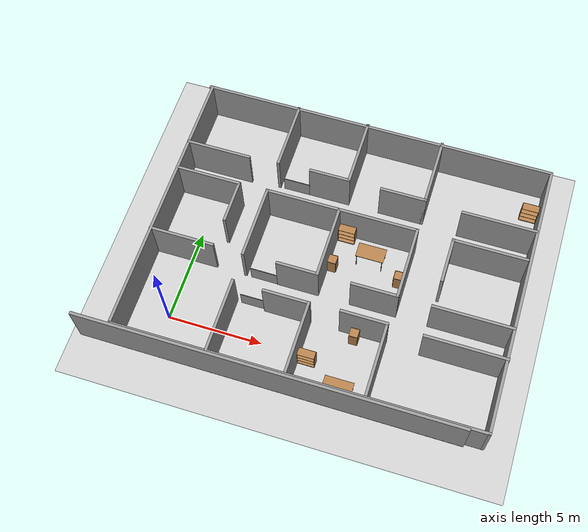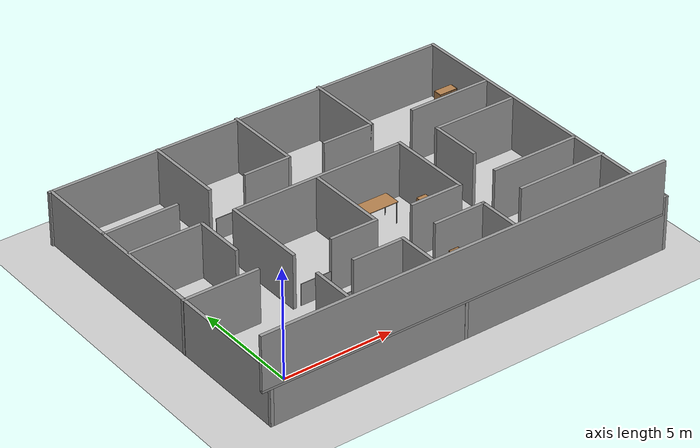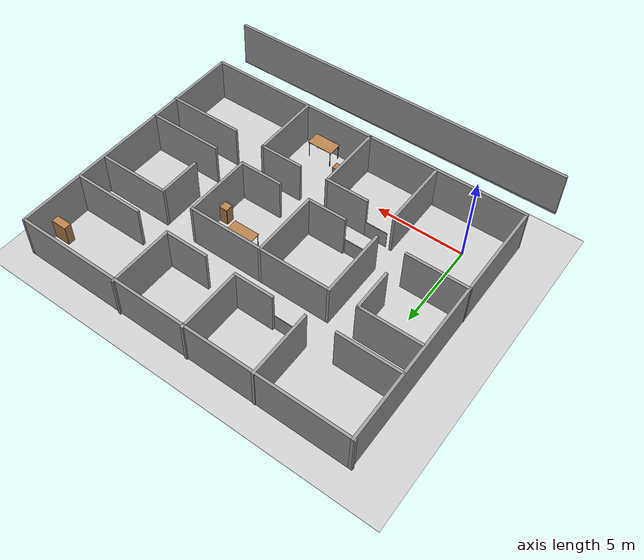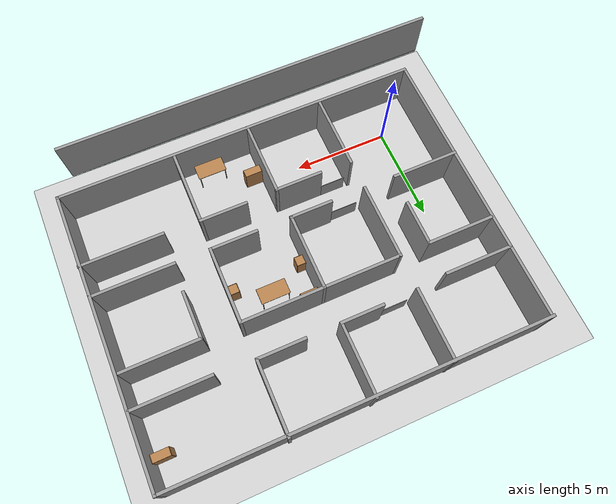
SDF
<sdf version="1.7">
 <world name="default">
  <light name="sun" type="directional">
   <pose>0 0 10 0 -0 0</pose>
   <diffuse>0.8 0.8 0.8 1</diffuse>
   <specular>0.2 0.2 0.2 1</specular>
   <attenuation>
    <range>1000</range>
    <constant>0.9</constant>
    <linear>0.01</linear>
    <quadratic>0.001</quadratic>
   </attenuation>
   <direction>-0.5 0.1 -0.9</direction>
   <spot><inner_angle>0</inner_angle><outer_angle>0</outer_angle><falloff>0</falloff></spot>
  </light>
  <model name="ground_plane">
   <static>1</static>
   <link name="link">
    <collision name="collision">
     <geometry><plane><normal>0 0 1</normal><size>100 100</size></plane></geometry>
     <surface><friction><ode><mu>100</mu><mu2>50</mu2></ode></friction></surface>
    </collision>
    <visual name="visual">
     <cast_shadows>0</cast_shadows>
     <geometry><plane><normal>0 0 1</normal><size>100 100</size></plane></geometry>
     <material>
      <script><uri>file://media/materials/scripts/gazebo.material</uri><name>Gazebo/Grey</name></script>
     </material>
    </visual>
   </link>
  </model>
  <gravity>0 0 -9.8</gravity>
  <magnetic_field>6e-06 2.3e-05 -4.2e-05</magnetic_field>
  <atmosphere type="adiabatic"/>
  <physics type="ode">
   <max_step_size>0.001</max_step_size>
   <real_time_factor>1</real_time_factor>
   <real_time_update_rate>1000</real_time_update_rate>
  </physics>
  <scene><ambient>0.4 0.4 0.4 1</ambient><background>0.7 0.7 0.7 1</background><shadows>1</shadows></scene>
  <spherical_coordinates>
   <surface_model>EARTH_WGS84</surface_model>
   <latitude_deg>0</latitude_deg>
   <longitude_deg>0</longitude_deg>
   <elevation>0</elevation>
   <heading_deg>0</heading_deg>
  </spherical_coordinates>
  <model name="indoors_2">
   <pose>7.48108 5.38602 0 0 -0 0</pose>
   <link name="Floor_0">
    <collision name="Floor_0_Collision">
     <geometry><box><size>19 0.15 0.1</size></box></geometry>
     <pose>0 0 0.05 0 -0 0</pose>
    </collision>
    <visual name="Floor_0_Visual">
     <pose>0 0 0.05 0 -0 0</pose>
     <geometry><box><size>19 0.15 0.1</size></box></geometry>
     <material>
      <script><uri>file://media/materials/scripts/gazebo.material</uri><name>Gazebo/Grey</name></script>
      <ambient>1 1 1 1</ambient>
     </material>
     <meta><layer>1</layer></meta>
    </visual>
    <pose>-1.02608 -8.28602 2.5 0 -0 0</pose>
   </link>
   <link name="Wall_0">
    <collision name="Wall_0_Collision">
     <geometry><box><size>19.15 0.15 2.5</size></box></geometry>
     <pose>0 0 1.25 0 -0 0</pose>
    </collision>
    <visual name="Wall_0_Visual">
     <pose>0 0 1.25 0 -0 0</pose>
     <geometry><box><size>19.15 0.15 2.5</size></box></geometry>
     <material>
      <script><uri>file://media/materials/scripts/gazebo.material</uri><name>Gazebo/Grey</name></script>
      <ambient>1 1 1 1</ambient>
     </material>
     <meta><layer>0</layer></meta>
    </visual>
    <pose>0.018922 -7.38602 0 0 -0 0</pose>
   </link>
   <link name="Wall_10">
    <collision name="Wall_10_Collision">
     <geometry><box><size>4 0.15 2.5</size></box></geometry>
     <pose>0 0 1.25 0 -0 0</pose>
    </collision>
    <visual name="Wall_10_Visual">
     <pose>0 0 1.25 0 -0 0</pose>
     <geometry><box><size>4 0.15 2.5</size></box></geometry>
     <material>
      <script><uri>file://media/materials/scripts/gazebo.material</uri><name>Gazebo/Grey</name></script>
      <ambient>1 1 1 1</ambient>
     </material>
     <meta><layer>0</layer></meta>
    </visual>
    <pose>-4.48108 -5.40902 0 0 -0 1.5708</pose>
   </link>
   <link name="Wall_12">
    <collision name="Wall_12_Collision">
     <geometry><box><size>4 0.15 2.5</size></box></geometry>
     <pose>0 0 1.25 0 -0 0</pose>
    </collision>
    <visual name="Wall_12_Visual">
     <pose>0 0 1.25 0 -0 0</pose>
     <geometry><box><size>4 0.15 2.5</size></box></geometry>
     <material>
      <script><uri>file://media/materials/scripts/gazebo.material</uri><name>Gazebo/Grey</name></script>
      <ambient>1 1 1 1</ambient>
     </material>
     <meta><layer>0</layer></meta>
    </visual>
    <pose>-0.481078 -5.46502 0 0 -0 1.5708</pose>
   </link>
   <link name="Wall_14">
    <collision name="Wall_14_Collision">
     <geometry><box><size>4 0.15 2.5</size></box></geometry>
     <pose>0 0 1.25 0 -0 0</pose>
    </collision>
    <visual name="Wall_14_Visual">
     <pose>0 0 1.25 0 -0 0</pose>
     <geometry><box><size>4 0.15 2.5</size></box></geometry>
     <material>
      <script><uri>file://media/materials/scripts/gazebo.material</uri><name>Gazebo/Grey</name></script>
      <ambient>1 1 1 1</ambient>
     </material>
     <meta><layer>0</layer></meta>
    </visual>
    <pose>3.51892 -5.39402 0 0 -0 1.5708</pose>
   </link>
   <link name="Wall_16">
    <collision name="Wall_16_Collision">
     <geometry><box><size>4.3 0.15 2.5</size></box></geometry>
     <pose>0 0 1.25 0 -0 0</pose>
    </collision>
    <visual name="Wall_16_Visual">
     <pose>0 0 1.25 0 -0 0</pose>
     <geometry><box><size>4.3 0.15 2.5</size></box></geometry>
     <material>
      <script><uri>file://media/materials/scripts/gazebo.material</uri><name>Gazebo/Grey</name></script>
      <ambient>1 1 1 1</ambient>
     </material>
     <meta><layer>0</layer></meta>
    </visual>
    <pose>7.47943 -3.5532 0 0 -0 3.14159</pose>
   </link>
   <link name="Wall_18">
    <collision name="Wall_18_Collision">
     <geometry><box><size>2.5 0.15 2.5</size></box></geometry>
     <pose>0 0 1.25 0 -0 0</pose>
    </collision>
    <visual name="Wall_18_Visual">
     <pose>0 0 1.25 0 -0 0</pose>
     <geometry><box><size>2.5 0.15 2.5</size></box></geometry>
     <material>
      <script><uri>file://media/materials/scripts/gazebo.material</uri><name>Gazebo/Grey</name></script>
      <ambient>1 1 1 1</ambient>
     </material>
     <meta><layer>0</layer></meta>
    </visual>
    <pose>-1.65608 -3.54002 0 0 -0 3.14159</pose>
   </link>
   <link name="Wall_2">
    <collision name="Wall_2_Collision">
     <geometry><box><size>19 0.15 2.5</size></box></geometry>
     <pose>0 0 1.25 0 -0 0</pose>
    </collision>
    <visual name="Wall_2_Visual">
     <pose>0 0 1.25 0 -0 0</pose>
     <geometry><box><size>19 0.15 2.5</size></box></geometry>
     <material>
      <script><uri>file://media/materials/scripts/gazebo.material</uri><name>Gazebo/Grey</name></script>
      <ambient>1 1 1 1</ambient>
     </material>
     <meta><layer>1</layer></meta>
    </visual>
    <pose>-1.02608 -8.28602 2.5 0 -0 0</pose>
   </link>
   <link name="Wall_20">
    <collision name="Wall_20_Collision">
     <geometry><box><size>2.5 0.15 2.5</size></box></geometry>
     <pose>0 0 1.25 0 -0 0</pose>
    </collision>
    <visual name="Wall_20_Visual">
     <pose>0 0 1.25 0 -0 0</pose>
     <geometry><box><size>2.5 0.15 2.5</size></box></geometry>
     <material>
      <script><uri>file://media/materials/scripts/gazebo.material</uri><name>Gazebo/Grey</name></script>
      <ambient>1 1 1 1</ambient>
     </material>
     <meta><layer>0</layer></meta>
    </visual>
    <pose>2.34392 -3.46902 0 0 -0 3.14159</pose>
   </link>
   <link name="Wall_22">
    <collision name="Wall_22_Collision">
     <geometry><box><size>3.5 0.15 2.5</size></box></geometry>
     <pose>0 0 1.25 0 -0 0</pose>
    </collision>
    <visual name="Wall_22_Visual">
     <pose>0 0 1.25 0 -0 0</pose>
     <geometry><box><size>3.5 0.15 2.5</size></box></geometry>
     <material>
      <script><uri>file://media/materials/scripts/gazebo.material</uri><name>Gazebo/Grey</name></script>
      <ambient>1 1 1 1</ambient>
     </material>
     <meta><layer>0</layer></meta>
    </visual>
    <pose>-7.82308 -1.88602 0 0 -0 0</pose>
   </link>
   <link name="Wall_24">
    <collision name="Wall_24_Collision">
     <geometry><box><size>3.5 0.15 2.5</size></box></geometry>
     <pose>0 0 1.25 0 -0 0</pose>
    </collision>
    <visual name="Wall_24_Visual">
     <pose>0 0 1.25 0 -0 0</pose>
     <geometry><box><size>3.5 0.15 2.5</size></box></geometry>
     <material>
      <script><uri>file://media/materials/scripts/gazebo.material</uri><name>Gazebo/Grey</name></script>
      <ambient>1 1 1 1</ambient>
     </material>
     <meta><layer>0</layer></meta>
    </visual>
    <pose>-7.71259 1.93002 0 0 -0 0</pose>
   </link>
   <link name="Wall_26">
    <collision name="Wall_26_Collision">
     <geometry><box><size>2.4 0.15 2.5</size></box></geometry>
     <pose>0 0 1.25 0 -0 0</pose>
    </collision>
    <visual name="Wall_26_Visual">
     <pose>0 0 1.25 0 -0 0</pose>
     <geometry><box><size>2.4 0.15 2.5</size></box></geometry>
     <material>
      <script><uri>file://media/materials/scripts/gazebo.material</uri><name>Gazebo/Grey</name></script>
      <ambient>1 1 1 1</ambient>
     </material>
     <meta><layer>0</layer></meta>
    </visual>
    <pose>-6.03759 0.805015 0 0 -0 -1.5708</pose>
   </link>
   <link name="Wall_28">
    <collision name="Wall_28_Collision">
     <geometry><box><size>3.5 0.15 2.5</size></box></geometry>
     <pose>0 0 1.25 0 -0 0</pose>
    </collision>
    <visual name="Wall_28_Visual">
     <pose>0 0 1.25 0 -0 0</pose>
     <geometry><box><size>3.5 0.15 2.5</size></box></geometry>
     <material>
      <script><uri>file://media/materials/scripts/gazebo.material</uri><name>Gazebo/Grey</name></script>
      <ambient>1 1 1 1</ambient>
     </material>
     <meta><layer>0</layer></meta>
    </visual>
    <pose>-7.76808 3.61398 0 0 -0 0</pose>
   </link>
   <link name="Wall_32">
    <collision name="Wall_32_Collision">
     <geometry><box><size>4 0.15 2.5</size></box></geometry>
     <pose>0 0 1.25 0 -0 0</pose>
    </collision>
    <visual name="Wall_32_Visual">
     <pose>0 0 1.25 0 -0 0</pose>
     <geometry><box><size>4 0.15 2.5</size></box></geometry>
     <material>
      <script><uri>file://media/materials/scripts/gazebo.material</uri><name>Gazebo/Grey</name></script>
      <ambient>1 1 1 1</ambient>
     </material>
     <meta><layer>0</layer></meta>
    </visual>
    <pose>-4.49048 0.026184 0 0 -0 1.5708</pose>
   </link>
   <link name="Wall_34">
    <collision name="Wall_34_Collision">
     <geometry><box><size>8.25 0.15 2.5</size></box></geometry>
     <pose>0 0 1.25 0 -0 0</pose>
    </collision>
    <visual name="Wall_34_Visual">
     <pose>0 0 1.25 0 -0 0</pose>
     <geometry><box><size>8.25 0.15 2.5</size></box></geometry>
     <material>
      <script><uri>file://media/materials/scripts/gazebo.material</uri><name>Gazebo/Grey</name></script>
      <ambient>1 1 1 1</ambient>
     </material>
     <meta><layer>0</layer></meta>
    </visual>
    <pose>-0.440485 1.95118 0 0 -0 0</pose>
   </link>
   <link name="Wall_35">
    <collision name="Wall_35_Collision">
     <geometry><box><size>4 0.15 2.5</size></box></geometry>
     <pose>0 0 1.25 0 -0 0</pose>
    </collision>
    <visual name="Wall_35_Visual">
     <pose>0 0 1.25 0 -0 0</pose>
     <geometry><box><size>4 0.15 2.5</size></box></geometry>
     <material>
      <script><uri>file://media/materials/scripts/gazebo.material</uri><name>Gazebo/Grey</name></script>
      <ambient>1 1 1 1</ambient>
     </material>
     <meta><layer>0</layer></meta>
    </visual>
    <pose>3.60952 0.026184 0 0 -0 -1.5708</pose>
   </link>
   <link name="Wall_37">
    <collision name="Wall_37_Collision">
     <geometry><box><size>2.5 0.15 2.5</size></box></geometry>
     <pose>0 0 1.25 0 -0 0</pose>
    </collision>
    <visual name="Wall_37_Visual">
     <pose>0 0 1.25 0 -0 0</pose>
     <geometry><box><size>2.5 0.15 2.5</size></box></geometry>
     <material>
      <script><uri>file://media/materials/scripts/gazebo.material</uri><name>Gazebo/Grey</name></script>
      <ambient>1 1 1 1</ambient>
     </material>
     <meta><layer>0</layer></meta>
    </visual>
    <pose>2.43452 -1.89882 0 0 -0 3.14159</pose>
   </link>
   <link name="Wall_39">
    <collision name="Wall_39_Collision">
     <geometry><box><size>4 0.15 2.5</size></box></geometry>
     <pose>0 0 1.25 0 -0 0</pose>
    </collision>
    <visual name="Wall_39_Visual">
     <pose>0 0 1.25 0 -0 0</pose>
     <geometry><box><size>4 0.15 2.5</size></box></geometry>
     <material>
      <script><uri>file://media/materials/scripts/gazebo.material</uri><name>Gazebo/Grey</name></script>
      <ambient>1 1 1 1</ambient>
     </material>
     <meta><layer>0</layer></meta>
    </visual>
    <pose>-0.557426 0.026184 0 0 -0 1.5708</pose>
   </link>
   <link name="Wall_4">
    <collision name="Wall_4_Collision">
     <geometry><box><size>14.8671 0.15 2.5</size></box></geometry>
     <pose>0 0 1.25 0 -0 0</pose>
    </collision>
    <visual name="Wall_4_Visual">
     <pose>0 0 1.25 0 -0 0</pose>
     <geometry><box><size>14.8671 0.15 2.5</size></box></geometry>
     <material>
      <script><uri>file://media/materials/scripts/gazebo.material</uri><name>Gazebo/Grey</name></script>
      <ambient>1 1 1 1</ambient>
     </material>
     <meta><layer>0</layer></meta>
    </visual>
    <pose>-9.48108 -0.027809 0 0 -0 1.5708</pose>
   </link>
   <link name="Wall_42">
    <collision name="Wall_42_Collision">
     <geometry><box><size>2.25 0.15 2.5</size></box></geometry>
     <pose>0 0 1.25 0 -0 0</pose>
    </collision>
    <visual name="Wall_42_Visual">
     <pose>0 0 1.25 0 -0 0</pose>
     <geometry><box><size>2.25 0.15 2.5</size></box></geometry>
     <material>
      <script><uri>file://media/materials/scripts/gazebo.material</uri><name>Gazebo/Grey</name></script>
      <ambient>1 1 1 1</ambient>
     </material>
     <meta><layer>0</layer></meta>
    </visual>
    <pose>-1.60743 -1.89882 0 0 -0 3.14159</pose>
   </link>
   <link name="Wall_44">
    <collision name="Wall_44_Collision">
     <geometry><box><size>4.25 0.15 2.5</size></box></geometry>
     <pose>0 0 1.25 0 -0 0</pose>
    </collision>
    <visual name="Wall_44_Visual">
     <pose>0 0 1.25 0 -0 0</pose>
     <geometry><box><size>4.25 0.15 2.5</size></box></geometry>
     <material>
      <script><uri>file://media/materials/scripts/gazebo.material</uri><name>Gazebo/Grey</name></script>
      <ambient>1 1 1 1</ambient>
     </material>
     <meta><layer>0</layer></meta>
    </visual>
    <pose>7.45621 -1.91179 0 0 -0 0</pose>
   </link>
   <link name="Wall_46">
    <collision name="Wall_46_Collision">
     <geometry><box><size>4 0.15 2.5</size></box></geometry>
     <pose>0 0 1.25 0 -0 0</pose>
    </collision>
    <visual name="Wall_46_Visual">
     <pose>0 0 1.25 0 -0 0</pose>
     <geometry><box><size>4 0.15 2.5</size></box></geometry>
     <material>
      <script><uri>file://media/materials/scripts/gazebo.material</uri><name>Gazebo/Grey</name></script>
      <ambient>1 1 1 1</ambient>
     </material>
     <meta><layer>0</layer></meta>
    </visual>
    <pose>7.42753 1.94115 0 0 -0 0</pose>
   </link>
   <link name="Wall_48">
    <collision name="Wall_48_Collision">
     <geometry><box><size>2.5 0.15 2.5</size></box></geometry>
     <pose>0 0 1.25 0 -0 0</pose>
    </collision>
    <visual name="Wall_48_Visual">
     <pose>0 0 1.25 0 -0 0</pose>
     <geometry><box><size>2.5 0.15 2.5</size></box></geometry>
     <material>
      <script><uri>file://media/materials/scripts/gazebo.material</uri><name>Gazebo/Grey</name></script>
      <ambient>1 1 1 1</ambient>
     </material>
     <meta><layer>0</layer></meta>
    </visual>
    <pose>5.50253 0.766149 0 0 -0 -1.5708</pose>
   </link>
   <link name="Wall_50">
    <collision name="Wall_50_Collision">
     <geometry><box><size>3.75 0.15 2.5</size></box></geometry>
     <pose>0 0 1.25 0 -0 0</pose>
    </collision>
    <visual name="Wall_50_Visual">
     <pose>0 0 1.25 0 -0 0</pose>
     <geometry><box><size>3.75 0.15 2.5</size></box></geometry>
     <material>
      <script><uri>file://media/materials/scripts/gazebo.material</uri><name>Gazebo/Grey</name></script>
      <ambient>1 1 1 1</ambient>
     </material>
     <meta><layer>0</layer></meta>
    </visual>
    <pose>-4.46932 5.55322 0 0 -0 -1.5708</pose>
   </link>
   <link name="Wall_52">
    <collision name="Wall_52_Collision">
     <geometry><box><size>3.75 0.15 2.5</size></box></geometry>
     <pose>0 0 1.25 0 -0 0</pose>
    </collision>
    <visual name="Wall_52_Visual">
     <pose>0 0 1.25 0 -0 0</pose>
     <geometry><box><size>3.75 0.15 2.5</size></box></geometry>
     <material>
      <script><uri>file://media/materials/scripts/gazebo.material</uri><name>Gazebo/Grey</name></script>
      <ambient>1 1 1 1</ambient>
     </material>
     <meta><layer>0</layer></meta>
    </visual>
    <pose>-0.580388 5.59002 0 0 -0 1.5708</pose>
   </link>
   <link name="Wall_54">
    <collision name="Wall_54_Collision">
     <geometry><box><size>3.75 0.15 2.5</size></box></geometry>
     <pose>0 0 1.25 0 -0 0</pose>
    </collision>
    <visual name="Wall_54_Visual">
     <pose>0 0 1.25 0 -0 0</pose>
     <geometry><box><size>3.75 0.15 2.5</size></box></geometry>
     <material>
      <script><uri>file://media/materials/scripts/gazebo.material</uri><name>Gazebo/Grey</name></script>
      <ambient>1 1 1 1</ambient>
     </material>
     <meta><layer>0</layer></meta>
    </visual>
    <pose>3.55972 5.59002 0 0 -0 1.5708</pose>
   </link>
   <link name="Wall_56">
    <collision name="Wall_56_Collision">
     <geometry><box><size>2.5 0.15 2.5</size></box></geometry>
     <pose>0 0 1.25 0 -0 0</pose>
    </collision>
    <visual name="Wall_56_Visual">
     <pose>0 0 1.25 0 -0 0</pose>
     <geometry><box><size>2.5 0.15 2.5</size></box></geometry>
     <material>
      <script><uri>file://media/materials/scripts/gazebo.material</uri><name>Gazebo/Grey</name></script>
      <ambient>1 1 1 1</ambient>
     </material>
     <meta><layer>0</layer></meta>
    </visual>
    <pose>2.38472 3.79002 0 0 -0 0</pose>
   </link>
   <link name="Wall_58">
    <collision name="Wall_58_Collision">
     <geometry><box><size>2.25 0.15 2.5</size></box></geometry>
     <pose>0 0 1.25 0 -0 0</pose>
    </collision>
    <visual name="Wall_58_Visual">
     <pose>0 0 1.25 0 -0 0</pose>
     <geometry><box><size>2.25 0.15 2.5</size></box></geometry>
     <material>
      <script><uri>file://media/materials/scripts/gazebo.material</uri><name>Gazebo/Grey</name></script>
      <ambient>1 1 1 1</ambient>
     </material>
     <meta><layer>0</layer></meta>
    </visual>
    <pose>-1.63039 3.79002 0 0 -0 0</pose>
   </link>
   <link name="Wall_6">
    <collision name="Wall_6_Collision">
     <geometry><box><size>14.8402 0.15 2.5</size></box></geometry>
     <pose>0 0 1.25 0 -0 0</pose>
    </collision>
    <visual name="Wall_6_Visual">
     <pose>0 0 1.25 0 -0 0</pose>
     <geometry><box><size>14.8402 0.15 2.5</size></box></geometry>
     <material>
      <script><uri>file://media/materials/scripts/gazebo.material</uri><name>Gazebo/Grey</name></script>
      <ambient>1 1 1 1</ambient>
     </material>
     <meta><layer>0</layer></meta>
    </visual>
    <pose>9.51892 -0.041274 0 0 -0 1.5708</pose>
   </link>
   <link name="Wall_60">
    <collision name="Wall_60_Collision">
     <geometry><box><size>4 0.15 2.5</size></box></geometry>
     <pose>0 0 1.25 0 -0 0</pose>
    </collision>
    <visual name="Wall_60_Visual">
     <pose>0 0 1.25 0 -0 0</pose>
     <geometry><box><size>4 0.15 2.5</size></box></geometry>
     <material>
      <script><uri>file://media/materials/scripts/gazebo.material</uri><name>Gazebo/Grey</name></script>
      <ambient>1 1 1 1</ambient>
     </material>
     <meta><layer>0</layer></meta>
    </visual>
    <pose>7.52292 3.66263 0 0 -0 0</pose>
   </link>
   <link name="Wall_8">
    <collision name="Wall_8_Collision">
     <geometry><box><size>19.15 0.15 2.5</size></box></geometry>
     <pose>0 0 1.25 0 -0 0</pose>
    </collision>
    <visual name="Wall_8_Visual">
     <pose>0 0 1.25 0 -0 0</pose>
     <geometry><box><size>19.15 0.15 2.5</size></box></geometry>
     <material>
      <script><uri>file://media/materials/scripts/gazebo.material</uri><name>Gazebo/Grey</name></script>
      <ambient>1 1 1 1</ambient>
     </material>
     <meta><layer>0</layer></meta>
    </visual>
    <pose>-0.054326 7.31693 0 0 -0 -0.001417</pose>
   </link>
   <static>1</static>
  </model>
  <model name="table">
   <static>1</static>
   <link name="link">
    <collision name="surface">
     <pose>0 0 1 0 -0 0</pose>
     <geometry><box><size>1.5 0.8 0.03</size></box></geometry>
     <surface><friction><ode><mu>0.6</mu><mu2>0.6</mu2></ode></friction></surface>
    </collision>
    <visual name="visual1">
     <pose>0 0 1 0 -0 0</pose>
     <geometry><box><size>1.5 0.8 0.03</size></box></geometry>
     <material>
      <script><uri>file://media/materials/scripts/gazebo.material</uri><name>Gazebo/Wood</name></script>
     </material>
    </visual>
    <collision name="front_left_leg">
     <pose>0.68 0.38 0.5 0 -0 0</pose>
     <geometry><cylinder><radius>0.02</radius><length>1</length></cylinder></geometry>
    </collision>
    <visual name="front_left_leg">
     <pose>0.68 0.38 0.5 0 -0 0</pose>
     <geometry><cylinder><radius>0.02</radius><length>1</length></cylinder></geometry>
     <material>
      <script><uri>file://media/materials/scripts/gazebo.material</uri><name>Gazebo/Grey</name></script>
     </material>
    </visual>
    <collision name="front_right_leg">
     <pose>0.68 -0.38 0.5 0 -0 0</pose>
     <geometry><cylinder><radius>0.02</radius><length>1</length></cylinder></geometry>
    </collision>
    <visual name="front_right_leg">
     <pose>0.68 -0.38 0.5 0 -0 0</pose>
     <geometry><cylinder><radius>0.02</radius><length>1</length></cylinder></geometry>
     <material>
      <script><uri>file://media/materials/scripts/gazebo.material</uri><name>Gazebo/Grey</name></script>
     </material>
    </visual>
    <collision name="back_right_leg">
     <pose>-0.68 -0.38 0.5 0 -0 0</pose>
     <geometry><cylinder><radius>0.02</radius><length>1</length></cylinder></geometry>
    </collision>
    <visual name="back_right_leg">
     <pose>-0.68 -0.38 0.5 0 -0 0</pose>
     <geometry><cylinder><radius>0.02</radius><length>1</length></cylinder></geometry>
     <material>
      <script><uri>file://media/materials/scripts/gazebo.material</uri><name>Gazebo/Grey</name></script>
     </material>
    </visual>
    <collision name="back_left_leg">
     <pose>-0.68 0.38 0.5 0 -0 0</pose>
     <geometry><cylinder><radius>0.02</radius><length>1</length></cylinder></geometry>
    </collision>
    <visual name="back_left_leg">
     <pose>-0.68 0.38 0.5 0 -0 0</pose>
     <geometry><cylinder><radius>0.02</radius><length>1</length></cylinder></geometry>
     <material>
      <script><uri>file://media/materials/scripts/gazebo.material</uri><name>Gazebo/Grey</name></script>
     </material>
    </visual>
   </link>
   <pose>9.03826 6.14095 0 0 -0 0</pose>
  </model>
  <model name="bookshelf">
   <static>1</static>
   <link name="link">
    <inertial><mass>1</mass></inertial>
    <collision name="back">
     <pose>0 0.005 0.6 0 -0 0</pose>
     <geometry><box><size>0.9 0.01 1.2</size></box></geometry>
    </collision>
    <visual name="visual1">
     <pose>0 0.005 0.6 0 -0 0</pose>
     <geometry><box><size>0.9 0.01 1.2</size></box></geometry>
     <material>
      <script><uri>file://media/materials/scripts/gazebo.material</uri><name>Gazebo/Wood</name></script>
     </material>
    </visual>
    <collision name="left_side">
     <pose>0.45 -0.195 0.6 0 -0 0</pose>
     <geometry><box><size>0.02 0.4 1.2</size></box></geometry>
    </collision>
    <visual name="visual2">
     <pose>0.45 -0.195 0.6 0 -0 0</pose>
     <geometry><box><size>0.02 0.4 1.2</size></box></geometry>
     <material>
      <script><uri>file://media/materials/scripts/gazebo.material</uri><name>Gazebo/Wood</name></script>
     </material>
    </visual>
    <collision name="right_side">
     <pose>-0.45 -0.195 0.6 0 -0 0</pose>
     <geometry><box><size>0.02 0.4 1.2</size></box></geometry>
    </collision>
    <visual name="visual3">
     <pose>-0.45 -0.195 0.6 0 -0 0</pose>
     <geometry><box><size>0.02 0.4 1.2</size></box></geometry>
     <material>
      <script><uri>file://media/materials/scripts/gazebo.material</uri><name>Gazebo/Wood</name></script>
     </material>
    </visual>
    <collision name="bottom">
     <pose>0 -0.195 0.03 0 -0 0</pose>
     <geometry><box><size>0.88 0.4 0.06</size></box></geometry>
    </collision>
    <visual name="visual4">
     <pose>0 -0.195 0.03 0 -0 0</pose>
     <geometry><box><size>0.88 0.4 0.06</size></box></geometry>
     <material>
      <script><uri>file://media/materials/scripts/gazebo.material</uri><name>Gazebo/Wood</name></script>
     </material>
    </visual>
    <collision name="top">
     <pose>0 -0.195 1.19 0 -0 0</pose>
     <geometry><box><size>0.88 0.4 0.02</size></box></geometry>
    </collision>
    <visual name="visual5">
     <pose>0 -0.195 1.19 0 -0 0</pose>
     <geometry><box><size>0.88 0.4 0.02</size></box></geometry>
     <material>
      <script><uri>file://media/materials/scripts/gazebo.material</uri><name>Gazebo/Wood</name></script>
     </material>
    </visual>
    <collision name="low_shelf">
     <pose>0 -0.195 0.43 0 -0 0</pose>
     <geometry><box><size>0.88 0.4 0.02</size></box></geometry>
    </collision>
    <visual name="visual6">
     <pose>0 -0.195 0.43 0 -0 0</pose>
     <geometry><box><size>0.88 0.4 0.02</size></box></geometry>
     <material>
      <script><uri>file://media/materials/scripts/gazebo.material</uri><name>Gazebo/Wood</name></script>
     </material>
    </visual>
    <collision name="high_shelf">
     <pose>0 -0.195 0.8 0 -0 0</pose>
     <geometry><box><size>0.88 0.4 0.02</size></box></geometry>
    </collision>
    <visual name="visual7">
     <pose>0 -0.195 0.8 0 -0 0</pose>
     <geometry><box><size>0.88 0.4 0.02</size></box></geometry>
     <material>
      <script><uri>file://media/materials/scripts/gazebo.material</uri><name>Gazebo/Wood</name></script>
     </material>
    </visual>
   </link>
   <pose>7.47775 7.22963 0 0 -0 0</pose>
  </model>
  <model name="cabinet">
   <static>1</static>
   <link name="cabinet_bottom_plate">
    <inertial>
     <pose>0 0 -1 0 -0 0</pose>
     <inertia><ixx>2.05</ixx><ixy>0</ixy><ixz>0</ixz><iyy>2.05</iyy><iyz>0</iyz><izz>2.05</izz></inertia>
     <mass>25</mass>
    </inertial>
    <collision name="cabinet_bottom_plate_geom">
     <pose>0 0 0.01 0 -0 0</pose>
     <geometry><box><size>0.45 0.45 0.02</size></box></geometry>
    </collision>
    <visual name="cabinet_bottom_plate_geom_visual">
     <pose>0 0 0.01 0 -0 0</pose>
     <geometry><box><size>0.45 0.45 0.02</size></box></geometry>
     <material>
      <script><uri>file://media/materials/scripts/gazebo.material</uri><name>Gazebo/Wood</name></script>
     </material>
    </visual>
    <collision name="cabinet_bottom_plate_geom_cabinet_back_plate">
     <pose>0.235 0 0.51 0 -0 0</pose>
     <geometry><box><size>0.02 0.45 1.02</size></box></geometry>
    </collision>
    <visual name="cabinet_bottom_plate_geom_cabinet_back_plate_visual">
     <pose>0.235 0 0.51 0 -0 0</pose>
     <geometry><box><size>0.02 0.45 1.02</size></box></geometry>
     <material>
      <script><uri>file://media/materials/scripts/gazebo.material</uri><name>Gazebo/Wood</name></script>
     </material>
    </visual>
    <collision name="cabinet_bottom_plate_geom_cabinet_left_plate">
     <pose>0 0.235 0.51 0 -0 0</pose>
     <geometry><box><size>0.45 0.02 1.02</size></box></geometry>
    </collision>
    <visual name="cabinet_bottom_plate_geom_cabinet_left_plate_visual">
     <pose>0 0.235 0.51 0 -0 0</pose>
     <geometry><box><size>0.45 0.02 1.02</size></box></geometry>
     <material>
      <script><uri>file://media/materials/scripts/gazebo.material</uri><name>Gazebo/Wood</name></script>
     </material>
    </visual>
    <collision name="cabinet_bottom_plate_geom_cabinet_middle_plate">
     <pose>0 0 0.51 0 -0 0</pose>
     <geometry><box><size>0.45 0.45 0.02</size></box></geometry>
    </collision>
    <visual name="cabinet_bottom_plate_geom_cabinet_middle_plate_visual">
     <pose>0 0 0.51 0 -0 0</pose>
     <geometry><box><size>0.45 0.45 0.02</size></box></geometry>
     <material>
      <script><uri>file://media/materials/scripts/gazebo.material</uri><name>Gazebo/Wood</name></script>
     </material>
    </visual>
    <collision name="cabinet_bottom_plate_geom_cabinet_right_plate">
     <pose>0 -0.235 0.51 0 -0 0</pose>
     <geometry><box><size>0.45 0.02 1.02</size></box></geometry>
    </collision>
    <visual name="cabinet_bottom_plate_geom_cabinet_right_plate_visual">
     <pose>0 -0.235 0.51 0 -0 0</pose>
     <geometry><box><size>0.45 0.02 1.02</size></box></geometry>
     <material>
      <script><uri>file://media/materials/scripts/gazebo.material</uri><name>Gazebo/Wood</name></script>
     </material>
    </visual>
    <collision name="cabinet_bottom_plate_geom_cabinet_top_plate">
     <pose>0 0 1.01 0 -0 0</pose>
     <geometry><box><size>0.45 0.45 0.02</size></box></geometry>
    </collision>
    <visual name="cabinet_bottom_plate_geom_cabinet_top_plate_visual">
     <pose>0 0 1.01 0 -0 0</pose>
     <geometry><box><size>0.45 0.45 0.02</size></box></geometry>
     <material>
      <script><uri>file://media/materials/scripts/gazebo.material</uri><name>Gazebo/Wood</name></script>
     </material>
    </visual>
   </link>
   <pose>10.7673 5.28422 0 0 0 -3.14159</pose>
  </model>
  <model name="cabinet_0">
   <static>1</static>
   <link name="cabinet_bottom_plate">
    <inertial>
     <pose>0 0 -1 0 -0 0</pose>
     <inertia><ixx>2.05</ixx><ixy>0</ixy><ixz>0</ixz><iyy>2.05</iyy><iyz>0</iyz><izz>2.05</izz></inertia>
     <mass>25</mass>
    </inertial>
    <collision name="cabinet_bottom_plate_geom">
     <pose>0 0 0.01 0 -0 0</pose>
     <geometry><box><size>0.45 0.45 0.02</size></box></geometry>
    </collision>
    <visual name="cabinet_bottom_plate_geom_visual">
     <pose>0 0 0.01 0 -0 0</pose>
     <geometry><box><size>0.45 0.45 0.02</size></box></geometry>
     <material>
      <script><uri>file://media/materials/scripts/gazebo.material</uri><name>Gazebo/Wood</name></script>
     </material>
    </visual>
    <collision name="cabinet_bottom_plate_geom_cabinet_back_plate">
     <pose>0.235 0 0.51 0 -0 0</pose>
     <geometry><box><size>0.02 0.45 1.02</size></box></geometry>
    </collision>
    <visual name="cabinet_bottom_plate_geom_cabinet_back_plate_visual">
     <pose>0.235 0 0.51 0 -0 0</pose>
     <geometry><box><size>0.02 0.45 1.02</size></box></geometry>
     <material>
      <script><uri>file://media/materials/scripts/gazebo.material</uri><name>Gazebo/Wood</name></script>
     </material>
    </visual>
    <collision name="cabinet_bottom_plate_geom_cabinet_left_plate">
     <pose>0 0.235 0.51 0 -0 0</pose>
     <geometry><box><size>0.45 0.02 1.02</size></box></geometry>
    </collision>
    <visual name="cabinet_bottom_plate_geom_cabinet_left_plate_visual">
     <pose>0 0.235 0.51 0 -0 0</pose>
     <geometry><box><size>0.45 0.02 1.02</size></box></geometry>
     <material>
      <script><uri>file://media/materials/scripts/gazebo.material</uri><name>Gazebo/Wood</name></script>
     </material>
    </visual>
    <collision name="cabinet_bottom_plate_geom_cabinet_middle_plate">
     <pose>0 0 0.51 0 -0 0</pose>
     <geometry><box><size>0.45 0.45 0.02</size></box></geometry>
    </collision>
    <visual name="cabinet_bottom_plate_geom_cabinet_middle_plate_visual">
     <pose>0 0 0.51 0 -0 0</pose>
     <geometry><box><size>0.45 0.45 0.02</size></box></geometry>
     <material>
      <script><uri>file://media/materials/scripts/gazebo.material</uri><name>Gazebo/Wood</name></script>
     </material>
    </visual>
    <collision name="cabinet_bottom_plate_geom_cabinet_right_plate">
     <pose>0 -0.235 0.51 0 -0 0</pose>
     <geometry><box><size>0.45 0.02 1.02</size></box></geometry>
    </collision>
    <visual name="cabinet_bottom_plate_geom_cabinet_right_plate_visual">
     <pose>0 -0.235 0.51 0 -0 0</pose>
     <geometry><box><size>0.45 0.02 1.02</size></box></geometry>
     <material>
      <script><uri>file://media/materials/scripts/gazebo.material</uri><name>Gazebo/Wood</name></script>
     </material>
    </visual>
    <collision name="cabinet_bottom_plate_geom_cabinet_top_plate">
     <pose>0 0 1.01 0 -0 0</pose>
     <geometry><box><size>0.45 0.45 0.02</size></box></geometry>
    </collision>
    <visual name="cabinet_bottom_plate_geom_cabinet_top_plate_visual">
     <pose>0 0 1.01 0 -0 0</pose>
     <geometry><box><size>0.45 0.45 0.02</size></box></geometry>
     <material>
      <script><uri>file://media/materials/scripts/gazebo.material</uri><name>Gazebo/Wood</name></script>
     </material>
    </visual>
   </link>
   <pose>7.21592 5.20257 0 0 -0 0</pose>
  </model>
  <model name="table_0">
   <static>1</static>
   <link name="link">
    <collision name="surface">
     <pose>0 0 1 0 -0 0</pose>
     <geometry><box><size>1.5 0.8 0.03</size></box></geometry>
     <surface><friction><ode><mu>0.6</mu><mu2>0.6</mu2></ode></friction></surface>
    </collision>
    <visual name="visual1">
     <pose>0 0 1 0 -0 0</pose>
     <geometry><box><size>1.5 0.8 0.03</size></box></geometry>
     <material>
      <script><uri>file://media/materials/scripts/gazebo.material</uri><name>Gazebo/Wood</name></script>
     </material>
    </visual>
    <collision name="front_left_leg">
     <pose>0.68 0.38 0.5 0 -0 0</pose>
     <geometry><cylinder><radius>0.02</radius><length>1</length></cylinder></geometry>
    </collision>
    <visual name="front_left_leg">
     <pose>0.68 0.38 0.5 0 -0 0</pose>
     <geometry><cylinder><radius>0.02</radius><length>1</length></cylinder></geometry>
     <material>
      <script><uri>file://media/materials/scripts/gazebo.material</uri><name>Gazebo/Grey</name></script>
     </material>
    </visual>
    <collision name="front_right_leg">
     <pose>0.68 -0.38 0.5 0 -0 0</pose>
     <geometry><cylinder><radius>0.02</radius><length>1</length></cylinder></geometry>
    </collision>
    <visual name="front_right_leg">
     <pose>0.68 -0.38 0.5 0 -0 0</pose>
     <geometry><cylinder><radius>0.02</radius><length>1</length></cylinder></geometry>
     <material>
      <script><uri>file://media/materials/scripts/gazebo.material</uri><name>Gazebo/Grey</name></script>
     </material>
    </visual>
    <collision name="back_right_leg">
     <pose>-0.68 -0.38 0.5 0 -0 0</pose>
     <geometry><cylinder><radius>0.02</radius><length>1</length></cylinder></geometry>
    </collision>
    <visual name="back_right_leg">
     <pose>-0.68 -0.38 0.5 0 -0 0</pose>
     <geometry><cylinder><radius>0.02</radius><length>1</length></cylinder></geometry>
     <material>
      <script><uri>file://media/materials/scripts/gazebo.material</uri><name>Gazebo/Grey</name></script>
     </material>
    </visual>
    <collision name="back_left_leg">
     <pose>-0.68 0.38 0.5 0 -0 0</pose>
     <geometry><cylinder><radius>0.02</radius><length>1</length></cylinder></geometry>
    </collision>
    <visual name="back_left_leg">
     <pose>-0.68 0.38 0.5 0 -0 0</pose>
     <geometry><cylinder><radius>0.02</radius><length>1</length></cylinder></geometry>
     <material>
      <script><uri>file://media/materials/scripts/gazebo.material</uri><name>Gazebo/Grey</name></script>
     </material>
    </visual>
   </link>
   <pose>9.46648 -1.38321 0 0 -0 0</pose>
  </model>
  <model name="cabinet_1">
   <static>1</static>
   <link name="cabinet_bottom_plate">
    <inertial>
     <pose>0 0 -1 0 -0 0</pose>
     <inertia><ixx>2.05</ixx><ixy>0</ixy><ixz>0</ixz><iyy>2.05</iyy><iyz>0</iyz><izz>2.05</izz></inertia>
     <mass>25</mass>
    </inertial>
    <collision name="cabinet_bottom_plate_geom">
     <pose>0 0 0.01 0 -0 0</pose>
     <geometry><box><size>0.45 0.45 0.02</size></box></geometry>
    </collision>
    <visual name="cabinet_bottom_plate_geom_visual">
     <pose>0 0 0.01 0 -0 0</pose>
     <geometry><box><size>0.45 0.45 0.02</size></box></geometry>
     <material>
      <script><uri>file://media/materials/scripts/gazebo.material</uri><name>Gazebo/Wood</name></script>
     </material>
    </visual>
    <collision name="cabinet_bottom_plate_geom_cabinet_back_plate">
     <pose>0.235 0 0.51 0 -0 0</pose>
     <geometry><box><size>0.02 0.45 1.02</size></box></geometry>
    </collision>
    <visual name="cabinet_bottom_plate_geom_cabinet_back_plate_visual">
     <pose>0.235 0 0.51 0 -0 0</pose>
     <geometry><box><size>0.02 0.45 1.02</size></box></geometry>
     <material>
      <script><uri>file://media/materials/scripts/gazebo.material</uri><name>Gazebo/Wood</name></script>
     </material>
    </visual>
    <collision name="cabinet_bottom_plate_geom_cabinet_left_plate">
     <pose>0 0.235 0.51 0 -0 0</pose>
     <geometry><box><size>0.45 0.02 1.02</size></box></geometry>
    </collision>
    <visual name="cabinet_bottom_plate_geom_cabinet_left_plate_visual">
     <pose>0 0.235 0.51 0 -0 0</pose>
     <geometry><box><size>0.45 0.02 1.02</size></box></geometry>
     <material>
      <script><uri>file://media/materials/scripts/gazebo.material</uri><name>Gazebo/Wood</name></script>
     </material>
    </visual>
    <collision name="cabinet_bottom_plate_geom_cabinet_middle_plate">
     <pose>0 0 0.51 0 -0 0</pose>
     <geometry><box><size>0.45 0.45 0.02</size></box></geometry>
    </collision>
    <visual name="cabinet_bottom_plate_geom_cabinet_middle_plate_visual">
     <pose>0 0 0.51 0 -0 0</pose>
     <geometry><box><size>0.45 0.45 0.02</size></box></geometry>
     <material>
      <script><uri>file://media/materials/scripts/gazebo.material</uri><name>Gazebo/Wood</name></script>
     </material>
    </visual>
    <collision name="cabinet_bottom_plate_geom_cabinet_right_plate">
     <pose>0 -0.235 0.51 0 -0 0</pose>
     <geometry><box><size>0.45 0.02 1.02</size></box></geometry>
    </collision>
    <visual name="cabinet_bottom_plate_geom_cabinet_right_plate_visual">
     <pose>0 -0.235 0.51 0 -0 0</pose>
     <geometry><box><size>0.45 0.02 1.02</size></box></geometry>
     <material>
      <script><uri>file://media/materials/scripts/gazebo.material</uri><name>Gazebo/Wood</name></script>
     </material>
    </visual>
    <collision name="cabinet_bottom_plate_geom_cabinet_top_plate">
     <pose>0 0 1.01 0 -0 0</pose>
     <geometry><box><size>0.45 0.45 0.02</size></box></geometry>
    </collision>
    <visual name="cabinet_bottom_plate_geom_cabinet_top_plate_visual">
     <pose>0 0 1.01 0 -0 0</pose>
     <geometry><box><size>0.45 0.45 0.02</size></box></geometry>
     <material>
      <script><uri>file://media/materials/scripts/gazebo.material</uri><name>Gazebo/Wood</name></script>
     </material>
    </visual>
   </link>
   <pose>9.45163 1.56576 0 0 -0 0</pose>
  </model>
  <model name="bookshelf_0">
   <static>1</static>
   <link name="link">
    <inertial><mass>1</mass></inertial>
    <collision name="back">
     <pose>0 0.005 0.6 0 -0 0</pose>
     <geometry><box><size>0.9 0.01 1.2</size></box></geometry>
    </collision>
    <visual name="visual1">
     <pose>0 0.005 0.6 0 -0 0</pose>
     <geometry><box><size>0.9 0.01 1.2</size></box></geometry>
     <material>
      <script><uri>file://media/materials/scripts/gazebo.material</uri><name>Gazebo/Wood</name></script>
     </material>
    </visual>
    <collision name="left_side">
     <pose>0.45 -0.195 0.6 0 -0 0</pose>
     <geometry><box><size>0.02 0.4 1.2</size></box></geometry>
    </collision>
    <visual name="visual2">
     <pose>0.45 -0.195 0.6 0 -0 0</pose>
     <geometry><box><size>0.02 0.4 1.2</size></box></geometry>
     <material>
      <script><uri>file://media/materials/scripts/gazebo.material</uri><name>Gazebo/Wood</name></script>
     </material>
    </visual>
    <collision name="right_side">
     <pose>-0.45 -0.195 0.6 0 -0 0</pose>
     <geometry><box><size>0.02 0.4 1.2</size></box></geometry>
    </collision>
    <visual name="visual3">
     <pose>-0.45 -0.195 0.6 0 -0 0</pose>
     <geometry><box><size>0.02 0.4 1.2</size></box></geometry>
     <material>
      <script><uri>file://media/materials/scripts/gazebo.material</uri><name>Gazebo/Wood</name></script>
     </material>
    </visual>
    <collision name="bottom">
     <pose>0 -0.195 0.03 0 -0 0</pose>
     <geometry><box><size>0.88 0.4 0.06</size></box></geometry>
    </collision>
    <visual name="visual4">
     <pose>0 -0.195 0.03 0 -0 0</pose>
     <geometry><box><size>0.88 0.4 0.06</size></box></geometry>
     <material>
      <script><uri>file://media/materials/scripts/gazebo.material</uri><name>Gazebo/Wood</name></script>
     </material>
    </visual>
    <collision name="top">
     <pose>0 -0.195 1.19 0 -0 0</pose>
     <geometry><box><size>0.88 0.4 0.02</size></box></geometry>
    </collision>
    <visual name="visual5">
     <pose>0 -0.195 1.19 0 -0 0</pose>
     <geometry><box><size>0.88 0.4 0.02</size></box></geometry>
     <material>
      <script><uri>file://media/materials/scripts/gazebo.material</uri><name>Gazebo/Wood</name></script>
     </material>
    </visual>
    <collision name="low_shelf">
     <pose>0 -0.195 0.43 0 -0 0</pose>
     <geometry><box><size>0.88 0.4 0.02</size></box></geometry>
    </collision>
    <visual name="visual6">
     <pose>0 -0.195 0.43 0 -0 0</pose>
     <geometry><box><size>0.88 0.4 0.02</size></box></geometry>
     <material>
      <script><uri>file://media/materials/scripts/gazebo.material</uri><name>Gazebo/Wood</name></script>
     </material>
    </visual>
    <collision name="high_shelf">
     <pose>0 -0.195 0.8 0 -0 0</pose>
     <geometry><box><size>0.88 0.4 0.02</size></box></geometry>
    </collision>
    <visual name="visual7">
     <pose>0 -0.195 0.8 0 -0 0</pose>
     <geometry><box><size>0.88 0.4 0.02</size></box></geometry>
     <material>
      <script><uri>file://media/materials/scripts/gazebo.material</uri><name>Gazebo/Wood</name></script>
     </material>
    </visual>
   </link>
   <pose>7.51945 -0.051005 0 0 -0 0</pose>
  </model>
  <model name="bookshelf_1">
   <static>1</static>
   <link name="link">
    <inertial><mass>1</mass></inertial>
    <collision name="back">
     <pose>0 0.005 0.6 0 -0 0</pose>
     <geometry><box><size>0.9 0.01 1.2</size></box></geometry>
    </collision>
    <visual name="visual1">
     <pose>0 0.005 0.6 0 -0 0</pose>
     <geometry><box><size>0.9 0.01 1.2</size></box></geometry>
     <material>
      <script><uri>file://media/materials/scripts/gazebo.material</uri><name>Gazebo/Wood</name></script>
     </material>
    </visual>
    <collision name="left_side">
     <pose>0.45 -0.195 0.6 0 -0 0</pose>
     <geometry><box><size>0.02 0.4 1.2</size></box></geometry>
    </collision>
    <visual name="visual2">
     <pose>0.45 -0.195 0.6 0 -0 0</pose>
     <geometry><box><size>0.02 0.4 1.2</size></box></geometry>
     <material>
      <script><uri>file://media/materials/scripts/gazebo.material</uri><name>Gazebo/Wood</name></script>
     </material>
    </visual>
    <collision name="right_side">
     <pose>-0.45 -0.195 0.6 0 -0 0</pose>
     <geometry><box><size>0.02 0.4 1.2</size></box></geometry>
    </collision>
    <visual name="visual3">
     <pose>-0.45 -0.195 0.6 0 -0 0</pose>
     <geometry><box><size>0.02 0.4 1.2</size></box></geometry>
     <material>
      <script><uri>file://media/materials/scripts/gazebo.material</uri><name>Gazebo/Wood</name></script>
     </material>
    </visual>
    <collision name="bottom">
     <pose>0 -0.195 0.03 0 -0 0</pose>
     <geometry><box><size>0.88 0.4 0.06</size></box></geometry>
    </collision>
    <visual name="visual4">
     <pose>0 -0.195 0.03 0 -0 0</pose>
     <geometry><box><size>0.88 0.4 0.06</size></box></geometry>
     <material>
      <script><uri>file://media/materials/scripts/gazebo.material</uri><name>Gazebo/Wood</name></script>
     </material>
    </visual>
    <collision name="top">
     <pose>0 -0.195 1.19 0 -0 0</pose>
     <geometry><box><size>0.88 0.4 0.02</size></box></geometry>
    </collision>
    <visual name="visual5">
     <pose>0 -0.195 1.19 0 -0 0</pose>
     <geometry><box><size>0.88 0.4 0.02</size></box></geometry>
     <material>
      <script><uri>file://media/materials/scripts/gazebo.material</uri><name>Gazebo/Wood</name></script>
     </material>
    </visual>
    <collision name="low_shelf">
     <pose>0 -0.195 0.43 0 -0 0</pose>
     <geometry><box><size>0.88 0.4 0.02</size></box></geometry>
    </collision>
    <visual name="visual6">
     <pose>0 -0.195 0.43 0 -0 0</pose>
     <geometry><box><size>0.88 0.4 0.02</size></box></geometry>
     <material>
      <script><uri>file://media/materials/scripts/gazebo.material</uri><name>Gazebo/Wood</name></script>
     </material>
    </visual>
    <collision name="high_shelf">
     <pose>0 -0.195 0.8 0 -0 0</pose>
     <geometry><box><size>0.88 0.4 0.02</size></box></geometry>
    </collision>
    <visual name="visual7">
     <pose>0 -0.195 0.8 0 -0 0</pose>
     <geometry><box><size>0.88 0.4 0.02</size></box></geometry>
     <material>
      <script><uri>file://media/materials/scripts/gazebo.material</uri><name>Gazebo/Wood</name></script>
     </material>
    </visual>
   </link>
   <pose>16.468 11.322 0 0 -0 0</pose>
  </model>
  <model name="unit_box">
   <pose>4.018 3.44929 0.499995 -5e-06 7e-06 3e-06</pose>
   <link name="link">
    <inertial>
     <mass>1</mass>
     <inertia>
      <ixx>0.166667</ixx>
      <ixy>0</ixy>
      <ixz>0</ixz>
      <iyy>0.166667</iyy>
      <iyz>0</iyz>
      <izz>0.166667</izz>
     </inertia>
    </inertial>
    <collision name="collision"><geometry><box><size>1.43503 0.0328028 1</size></box></geometry></collision>
    <visual name="visual">
     <geometry><box><size>1.43503 0.0328028 1</size></box></geometry>
     <material>
      <script><name>Gazebo/Grey</name><uri>file://media/materials/scripts/gazebo.material</uri></script>
     </material>
    </visual>
   </link>
  </model>
  <model name="unit_box_clone">
   <pose>3.93432 1.9056 0.499995 0 8e-06 -5.5e-05</pose>
   <link name="link">
    <inertial>
     <mass>1</mass>
     <inertia>
      <ixx>0.166667</ixx>
      <ixy>0</ixy>
      <ixz>0</ixz>
      <iyy>0.166667</iyy>
      <iyz>0</iyz>
      <izz>0.166667</izz>
     </inertia>
    </inertial>
    <collision name="collision"><geometry><box><size>1.28137 0.032803 1</size></box></geometry></collision>
    <visual name="visual">
     <geometry><box><size>1.28137 0.032803 1</size></box></geometry>
     <material>
      <script><name>Gazebo/Grey</name><uri>file://media/materials/scripts/gazebo.material</uri></script>
     </material>
    </visual>
   </link>
  </model>
  <model name="unit_box_clone_1">
   <pose>4.00647 9.11168 0.499994 4e-06 -9e-06 2e-06</pose>
   <link name="link">
    <inertial>
     <mass>1</mass>
     <inertia>
      <ixx>0.166667</ixx>
      <ixy>0</ixy>
      <ixz>0</ixz>
      <iyy>0.166667</iyy>
      <iyz>0</iyz>
      <izz>0.166667</izz>
     </inertia>
    </inertial>
    <collision name="collision"><geometry><box><size>1.43503 0.032803 1</size></box></geometry></collision>
    <visual name="visual">
     <geometry><box><size>1.43503 0.032803 1</size></box></geometry>
     <material>
      <script><name>Gazebo/Grey</name><uri>file://media/materials/scripts/gazebo.material</uri></script>
     </material>
    </visual>
   </link>
  </model>
 </world>
</sdf>
